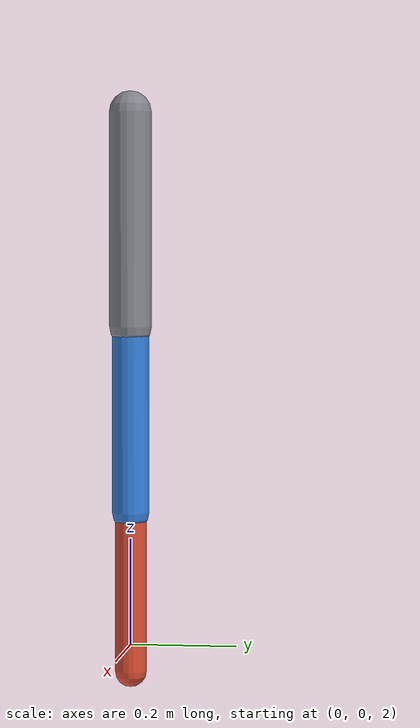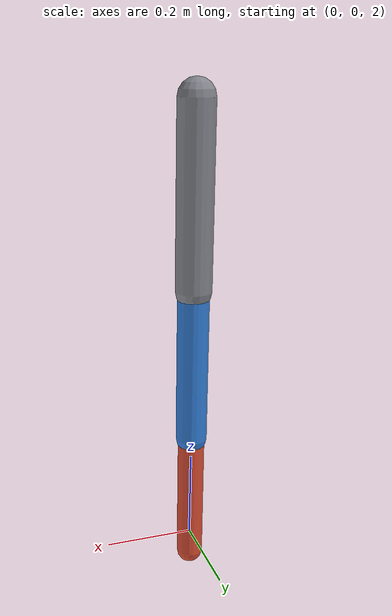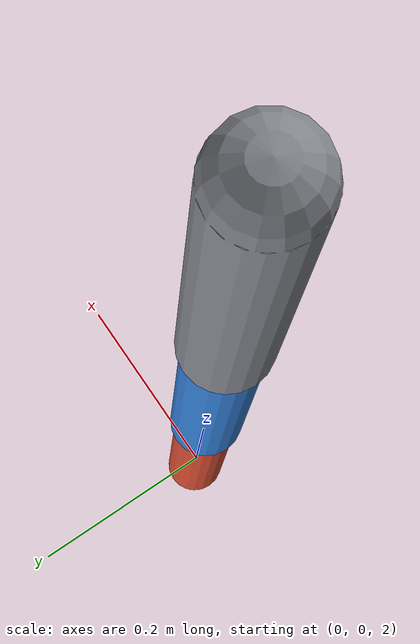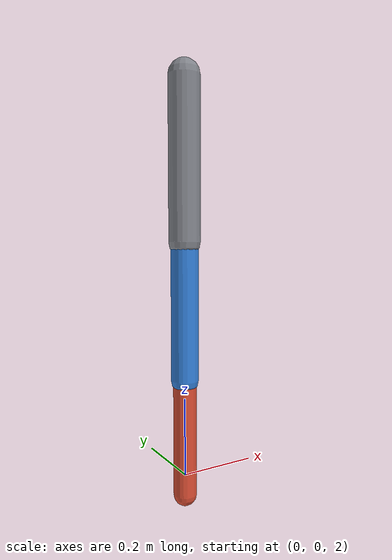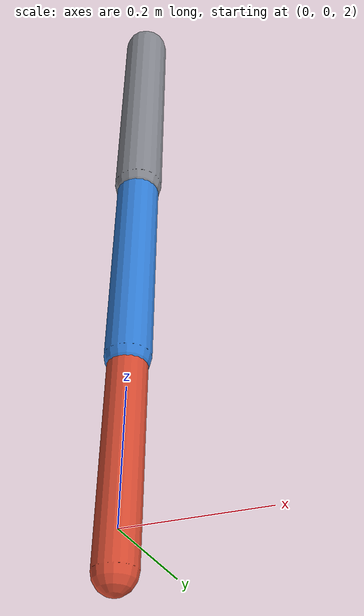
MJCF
<mujoco model="subtree-velocity">
    <compiler angle="radian"/>
    <option gravity="0 0 -9.81" timestep="0.001">
        <flag energy="enable"/>
    </option>

    <default>
        <geom contype="0" conaffinity="0"/>
    </default>

    <worldbody>
        <body name="link1" pos="0 0 3">
            <freejoint name="root"/>
            <geom name="g1" type="capsule" size="0.04"
                  fromto="0 0 0 0 0 -0.4" mass="2.0" rgba="0.52 0.53 0.56 1"/>
            <body name="link2" pos="0 0 -0.4">
                <joint name="j2" type="hinge" axis="0 1 0" damping="0.02"/>
                <geom name="g2" type="capsule" size="0.035"
                      fromto="0 0 0 0 0 -0.35" mass="1.0" rgba="0.2 0.5 0.85 1"/>
                <body name="link3" pos="0 0 -0.35">
                    <joint name="j3" type="hinge" axis="0 1 0" damping="0.02"/>
                    <geom name="g3" type="capsule" size="0.03"
                          fromto="0 0 0 0 0 -0.3" mass="0.5" rgba="0.85 0.3 0.2 1"/>
                </body>
            </body>
        </body>
    </worldbody>

    <sensor>
        <subtreelinvel name="sub_vel" body="link1"/>
        <subtreecom name="sub_com" body="link1"/>
    </sensor>
</mujoco>
